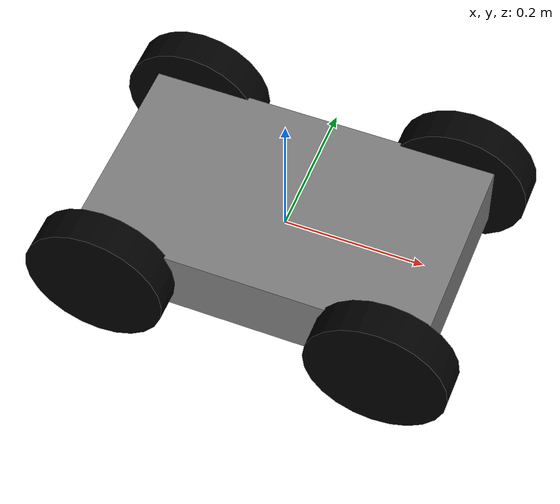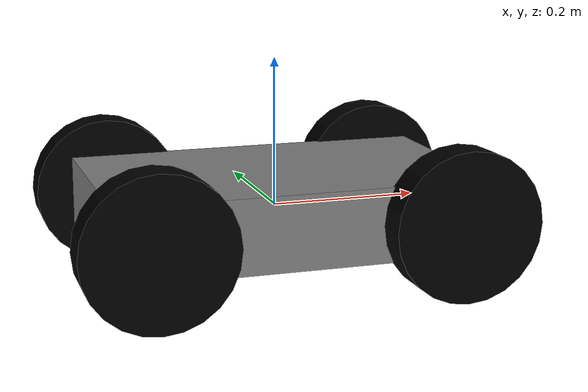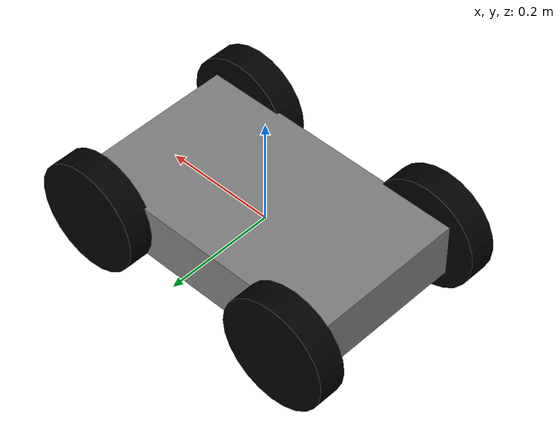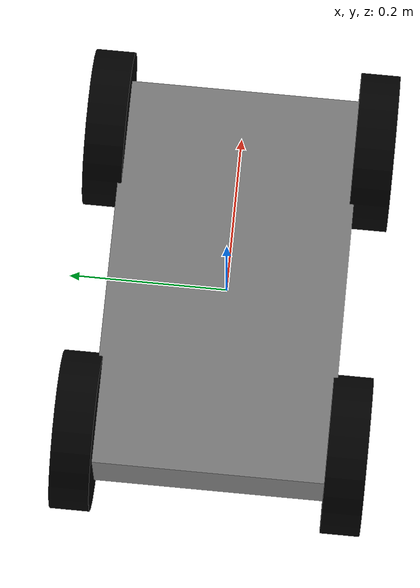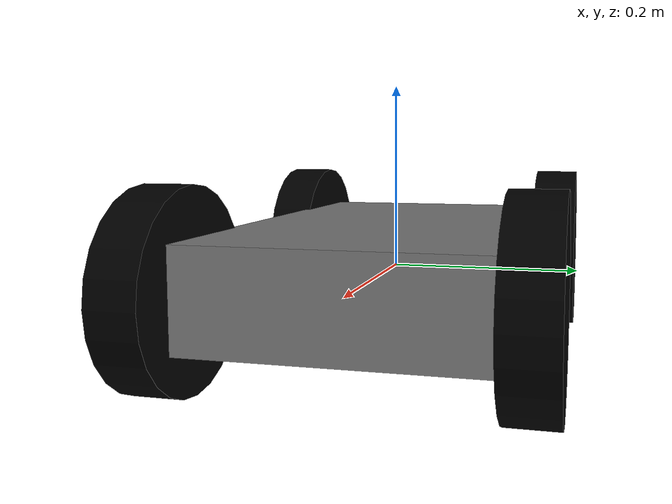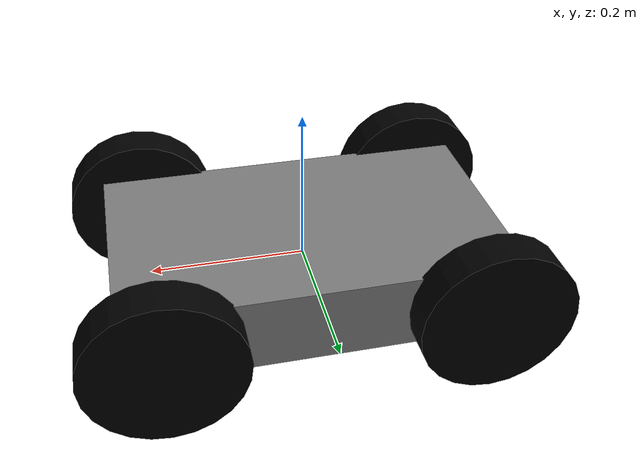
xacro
<?xml version="1.0"?>
<robot xmlns:xacro="http://www.ros.org/wiki/xacro" name="ddsm_robot">
  <xacro:macro name="ddsm_robot" params="prefix:=''">

    <!-- Constants for robot dimensions -->
    <xacro:property name="base_length" value="0.5" />
    <xacro:property name="base_width" value="0.3" />
    <xacro:property name="base_height" value="0.1" />
    <xacro:property name="wheel_radius" value="0.1" />
    <xacro:property name="wheel_width" value="0.05" />
    <xacro:property name="wheel_height" value="0.05" />

    <!-- Base link -->
    <link name="${prefix}base_link">
      <visual>
        <origin xyz="0 0 0" rpy="0 0 0"/>
        <geometry>
          <box size="${base_length} ${base_width} ${base_height}"/>
        </geometry>
        <material name="gray">
          <color rgba="0.5 0.5 0.5 1.0"/>
        </material>
      </visual>
      <collision>
        <origin xyz="0 0 0" rpy="0 0 0"/>
        <geometry>
          <box size="${base_length} ${base_width} ${base_height}"/>
        </geometry>
      </collision>
    </link>

    <!-- Wheels -->
    <link name="${prefix}front_left_wheel_link">
      <visual>
        <origin xyz="0 0 0" rpy="1.5708 0 0"/>
        <geometry>
          <cylinder radius="${wheel_radius}" length="${wheel_width}"/>
        </geometry>
        <material name="black">
          <color rgba="0 0 0 1.0"/>
        </material>
      </visual>
      <collision>
        <origin xyz="0 0 0" rpy="1.5708 0 0"/>
        <geometry>
          <cylinder radius="${wheel_radius}" length="${wheel_width}"/>
        </geometry>
      </collision>
    </link>

    <link name="${prefix}front_right_wheel_link">
      <visual>
        <origin xyz="0 0 0" rpy="1.5708 0 0"/>
        <geometry>
          <cylinder radius="${wheel_radius}" length="${wheel_width}"/>
        </geometry>
        <material name="black">
          <color rgba="0 0 0 1.0"/>
        </material>
      </visual>
      <collision>
        <origin xyz="0 0 0" rpy="1.5708 0 0"/>
        <geometry>
          <cylinder radius="${wheel_radius}" length="${wheel_width}"/>
        </geometry>
      </collision>
    </link>

    <link name="${prefix}rear_left_wheel_link">
      <visual>
        <origin xyz="0 0 0" rpy="1.5708 0 0"/>
        <geometry>
          <cylinder radius="${wheel_radius}" length="${wheel_width}"/>
        </geometry>
        <material name="black">
          <color rgba="0 0 0 1.0"/>
        </material>
      </visual>
      <collision>
        <origin xyz="0 0 0" rpy="1.5708 0 0"/>
        <geometry>
          <cylinder radius="${wheel_radius}" length="${wheel_width}"/>
        </geometry>
      </collision>
    </link>

    <link name="${prefix}rear_right_wheel_link">
      <visual>
        <origin xyz="0 0 0" rpy="1.5708 0 0"/>
        <geometry>
          <cylinder radius="${wheel_radius}" length="${wheel_width}"/>
        </geometry>
        <material name="black">
          <color rgba="0 0 0 1.0"/>
        </material>
      </visual>
      <collision>
        <origin xyz="0 0 0" rpy="1.5708 0 0"/>
        <geometry>
          <cylinder radius="${wheel_radius}" length="${wheel_width}"/>
        </geometry>
      </collision>
    </link>

    <!-- Joints -->
    <joint name="${prefix}front_left_wheel_joint" type="continuous">
      <parent link="${prefix}base_link"/>
      <child link="${prefix}front_left_wheel_link"/>
      <origin xyz="${base_length/2 - 0.05} ${base_width/2 + 0.02} 0" rpy="0 0 0"/>
      <axis xyz="0 1 0"/>
    </joint>

    <joint name="${prefix}front_right_wheel_joint" type="continuous">
      <parent link="${prefix}base_link"/>
      <child link="${prefix}front_right_wheel_link"/>
      <origin xyz="${base_length/2 - 0.05} ${-base_width/2 - 0.02} 0" rpy="0 0 0"/>
      <axis xyz="0 1 0"/>
    </joint>

    <joint name="${prefix}rear_left_wheel_joint" type="continuous">
      <parent link="${prefix}base_link"/>
      <child link="${prefix}rear_left_wheel_link"/>
      <origin xyz="${-base_length/2 + 0.05} ${base_width/2 + 0.02} 0" rpy="0 0 0"/>
      <axis xyz="0 1 0"/>
    </joint>

    <joint name="${prefix}rear_right_wheel_joint" type="continuous">
      <parent link="${prefix}base_link"/>
      <child link="${prefix}rear_right_wheel_link"/>
      <origin xyz="${-base_length/2 + 0.05} ${-base_width/2 - 0.02} 0" rpy="0 0 0"/>
      <axis xyz="0 1 0"/>
    </joint>

  </xacro:macro>

  <!-- Instantiate the robot -->
  <xacro:ddsm_robot/>

  <xacro:include filename="$(find ddsm_mobile_bringup)/urdf/ddsm_ros2_control.xacro"/>
</robot>
